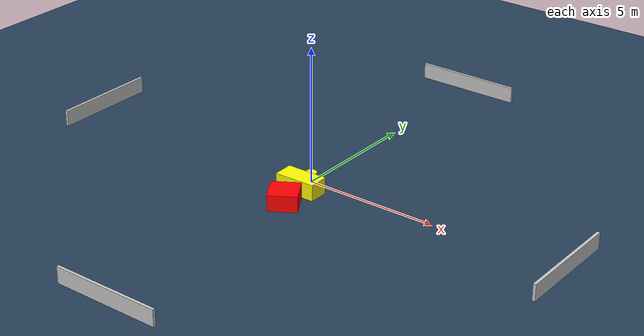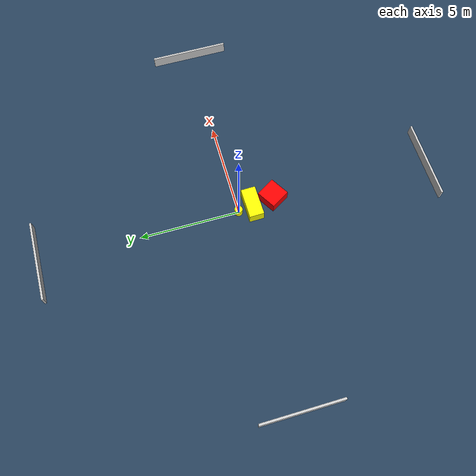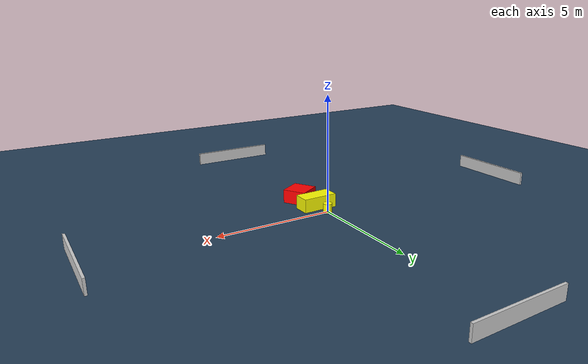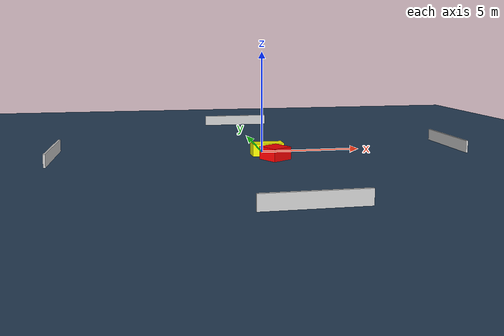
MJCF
<?xml version="1.0" ?>
<mujoco model="generated_environment">
  <option timestep="0.01" integrator="RK4" cone="elliptic"/>
  <default>
    <geom density="1"/>
  </default>
  <asset>
    <texture builtin="gradient" height="3072" name="skybox" rgb1="0.3 0.5 0.7" rgb2="0 0 0" type="skybox" width="512"/>
    <texture builtin="checker" height="300" name="groundplane" rgb1="0.2 0.3 0.4" rgb2="0.1 0.2 0.3" type="2d" width="300"/>
    <material name="groundplane" reflectance="0.2" texrepeat="5 5" texture="groundplane"/>
  </asset>
  <worldbody>
    <light dir="0 0 -1" directional="true" pos="0 0 1.5"/>
    <geom condim="3" friction="0.5 0.005 0.001" material="groundplane" name="floor" pos="0 0 0" size="0 0 0.05" type="plane"/>
    <body name="walls">
      <geom name="wall_1" condim="4" pos="-10.0 0.0 0.3" rgba="0.800000011920929 0.800000011920929 0.800000011920929 1.0" size="0.05 2.0 0.3" type="box"/>
      <geom name="wall_2" condim="4" pos="10.0 0.0 0.3" rgba="0.800000011920929 0.800000011920929 0.800000011920929 1.0" size="0.05 2.0 0.3" type="box"/>
      <geom name="wall_3" condim="4" pos="0.0 -10.0 0.3" rgba="0.800000011920929 0.800000011920929 0.800000011920929 1.0" size="2.0 0.05 0.3" type="box"/>
      <geom name="wall_4" condim="4" pos="0.0 10.0 0.3" rgba="0.800000011920929 0.800000011920929 0.800000011920929 1.0" size="2.0 0.05 0.3" type="box"/>
    </body>
    <body name="robot">
      <joint name="joint_x" type="slide" pos="0 0 0" axis="1 0 0"/>
      <joint name="joint_y" type="slide" pos="0 0 0" axis="0 1 0"/>
      <geom name="robot" type="cylinder" pos="0.0 0.0 0.2" size="0.2 0.2 0.0" mass="5.0" friction="1.0 0.005 0.0001" condim="4" rgba="1.0 1.0 0.0 1.0"/>
    </body>
    <body name="obstacle_1_movable">
      <geom name="obstacle_1_movable" condim="4" pos="0.12039264102975254 -0.745982858377867 0.3" euler="0 0 270.9673443045247" friction="0.0 0.005 0.001" rgba="1.0 1.0 0.0 1.0" size="0.37106884553972797 0.7682513855853401 0.3" type="box" mass="0.1"/>
      <joint type="free"/>
    </body>
    <body name="obstacle_2_static">
      <geom name="obstacle_2_static" condim="4" pos="0.2968119613882406 -1.8655004160965099 0.3" euler="0 0 301.14052357979875" friction="0.0 0.005 0.001" rgba="1.0 0.0 0.0 1.0" size="0.5241625769164442 0.5241506867850425 0.3" type="box"/>
    </body>
  </worldbody>
  <actuator>
    <motor name="actuator_x" joint="joint_x" gear="1" ctrlrange="-1 1"/>
    <motor name="actuator_y" joint="joint_y" gear="1" ctrlrange="-1 1"/>
  </actuator>
</mujoco>
